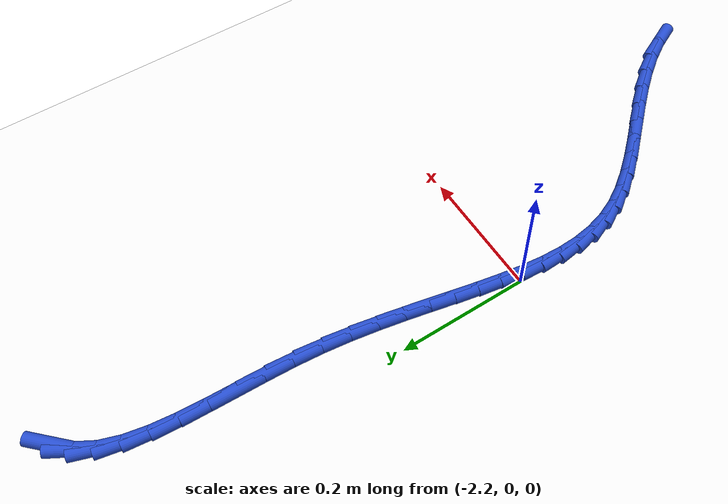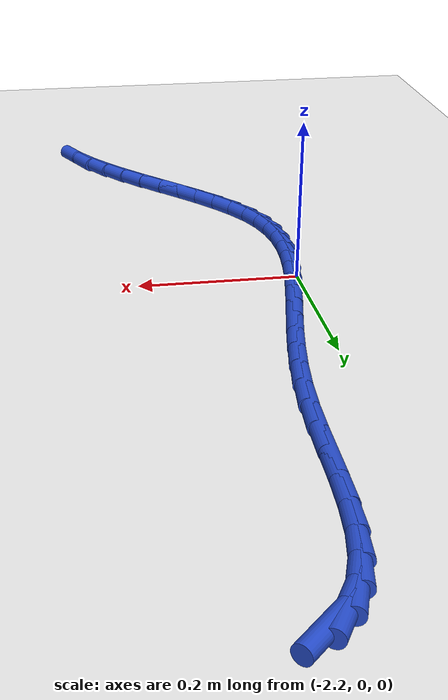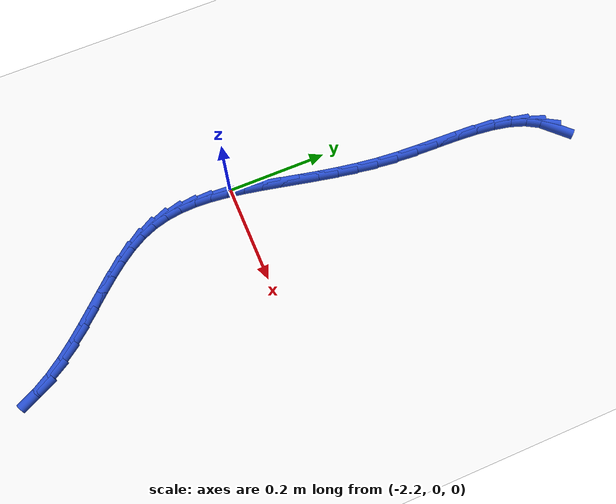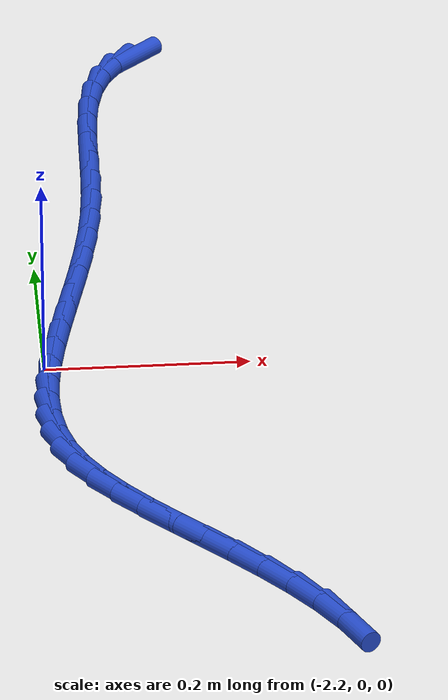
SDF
<sdf version="1.6">
 <world name="default">
  <model name="ground_plane">
   <static>1</static>
   <link name="link">
    <collision name="collision">
     <geometry><plane><normal>0 0 1</normal><size>100 100</size></plane></geometry>
     <surface><friction><ode><mu>100</mu><mu2>50</mu2></ode></friction></surface>
    </collision>
    <visual name="visual">
     <cast_shadows>0</cast_shadows>
     <geometry><plane><normal>0 0 1</normal><size>100 100</size></plane></geometry>
     <material>
      <script><uri>file://media/materials/scripts/gazebo.material</uri><name>Gazebo/WhiteGlow</name></script>
     </material>
    </visual>
   </link>
  </model>
  <model name="line">
   <link name="link_90">
    <pose>-2.0696606800046493 0.650584807200995 0.01 0 1.57 0.7820591072526031</pose>
    <collision name="collision">
     <geometry><cylinder><radius>0.01</radius><length>0.08</length></cylinder></geometry>
    </collision>
    <visual name="visual">
     <material>
      <script><name>Gazebo/Blue</name><uri>file://media/materials/scripts/gazebo.material</uri></script>
     </material>
     <geometry><cylinder><radius>0.01</radius><length>0.08</length></cylinder></geometry>
    </visual>
   </link>
   <link name="link_91">
    <pose>-2.089862924570618 0.6305170270083776 0.01 0 1.57 1.0436599838732687</pose>
    <collision name="collision">
     <geometry><cylinder><radius>0.01</radius><length>0.08</length></cylinder></geometry>
    </collision>
    <visual name="visual">
     <material>
      <script><name>Gazebo/Blue</name><uri>file://media/materials/scripts/gazebo.material</uri></script>
     </material>
     <geometry><cylinder><radius>0.01</radius><length>0.08</length></cylinder></geometry>
    </visual>
   </link>
   <link name="link_92">
    <pose>-2.1048303741443495 0.6048031483941926 0.01 0 1.57 1.237595492138099</pose>
    <collision name="collision">
     <geometry><cylinder><radius>0.01</radius><length>0.08</length></cylinder></geometry>
    </collision>
    <visual name="visual">
     <material>
      <script><name>Gazebo/Blue</name><uri>file://media/materials/scripts/gazebo.material</uri></script>
     </material>
     <geometry><cylinder><radius>0.01</radius><length>0.08</length></cylinder></geometry>
    </visual>
   </link>
   <link name="link_93">
    <pose>-2.1154105158824312 0.5742339960418432 0.01 0 1.57 1.3702488482016077</pose>
    <collision name="collision">
     <geometry><cylinder><radius>0.01</radius><length>0.08</length></cylinder></geometry>
    </collision>
    <visual name="visual">
     <material>
      <script><name>Gazebo/Blue</name><uri>file://media/materials/scripts/gazebo.material</uri></script>
     </material>
     <geometry><cylinder><radius>0.01</radius><length>0.08</length></cylinder></geometry>
    </visual>
   </link>
   <link name="link_94">
    <pose>-2.122450836941454 0.539600394634732 0.01 0 1.57 1.456594646070541</pose>
    <collision name="collision">
     <geometry><cylinder><radius>0.01</radius><length>0.08</length></cylinder></geometry>
    </collision>
    <visual name="visual">
     <material>
      <script><name>Gazebo/Blue</name><uri>file://media/materials/scripts/gazebo.material</uri></script>
     </material>
     <geometry><cylinder><radius>0.01</radius><length>0.08</length></cylinder></geometry>
    </visual>
   </link>
   <link name="link_95">
    <pose>-2.126798824478005 0.5016931688562607 0.01 0 1.57 1.5089012471780558</pose>
    <collision name="collision">
     <geometry><cylinder><radius>0.01</radius><length>0.08</length></cylinder></geometry>
    </collision>
    <visual name="visual">
     <material>
      <script><name>Gazebo/Blue</name><uri>file://media/materials/scripts/gazebo.material</uri></script>
     </material>
     <geometry><cylinder><radius>0.01</radius><length>0.08</length></cylinder></geometry>
    </visual>
   </link>
   <link name="link_96">
    <pose>-2.129301965648673 0.46130314338983264 0.01 0 1.57 1.535029495582107</pose>
    <collision name="collision">
     <geometry><cylinder><radius>0.01</radius><length>0.08</length></cylinder></geometry>
    </collision>
    <visual name="visual">
     <material>
      <script><name>Gazebo/Blue</name><uri>file://media/materials/scripts/gazebo.material</uri></script>
     </material>
     <geometry><cylinder><radius>0.01</radius><length>0.08</length></cylinder></geometry>
    </visual>
   </link>
   <link name="link_97">
    <pose>-2.130807747610046 0.41922114291885 0.01 0 1.57 1.5392616347512258</pose>
    <collision name="collision">
     <geometry><cylinder><radius>0.01</radius><length>0.08</length></cylinder></geometry>
    </collision>
    <visual name="visual">
     <material>
      <script><name>Gazebo/Blue</name><uri>file://media/materials/scripts/gazebo.material</uri></script>
     </material>
     <geometry><cylinder><radius>0.01</radius><length>0.08</length></cylinder></geometry>
    </visual>
   </link>
   <link name="link_98">
    <pose>-2.132163657518714 0.3762379921267146 0.01 0 1.57 1.5231795429479786</pose>
    <collision name="collision">
     <geometry><cylinder><radius>0.01</radius><length>0.08</length></cylinder></geometry>
    </collision>
    <visual name="visual">
     <material>
      <script><name>Gazebo/Blue</name><uri>file://media/materials/scripts/gazebo.material</uri></script>
     </material>
     <geometry><cylinder><radius>0.01</radius><length>0.08</length></cylinder></geometry>
    </visual>
   </link>
   <link name="link_99">
    <pose>-2.134217182531265 0.3331445156968301 0.01 0 1.57 1.4866401281458708</pose>
    <collision name="collision">
     <geometry><cylinder><radius>0.01</radius><length>0.08</length></cylinder></geometry>
    </collision>
    <visual name="visual">
     <material>
      <script><name>Gazebo/Blue</name><uri>file://media/materials/scripts/gazebo.material</uri></script>
     </material>
     <geometry><cylinder><radius>0.01</radius><length>0.08</length></cylinder></geometry>
    </visual>
   </link>
   <link name="link_100">
    <pose>-2.1377959875711428 0.2907192110533849 0.01 0 1.57 1.4420358062812704</pose>
    <collision name="collision">
     <geometry><cylinder><radius>0.01</radius><length>0.08</length></cylinder></geometry>
    </collision>
    <visual name="visual">
     <material>
      <script><name>Gazebo/Blue</name><uri>file://media/materials/scripts/gazebo.material</uri></script>
     </material>
     <geometry><cylinder><radius>0.01</radius><length>0.08</length></cylinder></geometry>
    </visual>
   </link>
   <link name="link_101">
    <pose>-2.143148419422995 0.24938030315216994 0.01 0 1.57 1.405413087514917</pose>
    <collision name="collision">
     <geometry><cylinder><radius>0.01</radius><length>0.08</length></cylinder></geometry>
    </collision>
    <visual name="visual">
     <material>
      <script><name>Gazebo/Blue</name><uri>file://media/materials/scripts/gazebo.material</uri></script>
     </material>
     <geometry><cylinder><radius>0.01</radius><length>0.08</length></cylinder></geometry>
    </visual>
   </link>
   <link name="link_102">
    <pose>-2.149865318705014 0.20913712008607477 0.01 0 1.57 1.3782026235519917</pose>
    <collision name="collision">
     <geometry><cylinder><radius>0.01</radius><length>0.08</length></cylinder></geometry>
    </collision>
    <visual name="visual">
     <material>
      <script><name>Gazebo/Blue</name><uri>file://media/materials/scripts/gazebo.material</uri></script>
     </material>
     <geometry><cylinder><radius>0.01</radius><length>0.08</length></cylinder></geometry>
    </visual>
   </link>
   <link name="link_103">
    <pose>-2.157501987583788 0.16997688892123974 0.01 0 1.57 1.3609687617727926</pose>
    <collision name="collision">
     <geometry><cylinder><radius>0.01</radius><length>0.08</length></cylinder></geometry>
    </collision>
    <visual name="visual">
     <material>
      <script><name>Gazebo/Blue</name><uri>file://media/materials/scripts/gazebo.material</uri></script>
     </material>
     <geometry><cylinder><radius>0.01</radius><length>0.08</length></cylinder></geometry>
    </visual>
   </link>
   <link name="link_104">
    <pose>-2.165613728225906 0.13188683672380552 0.01 0 1.57 1.354376549212759</pose>
    <collision name="collision">
     <geometry><cylinder><radius>0.01</radius><length>0.08</length></cylinder></geometry>
    </collision>
    <visual name="visual">
     <material>
      <script><name>Gazebo/Blue</name><uri>file://media/materials/scripts/gazebo.material</uri></script>
     </material>
     <geometry><cylinder><radius>0.01</radius><length>0.08</length></cylinder></geometry>
    </visual>
   </link>
   <link name="link_105">
    <pose>-2.1737558427979593 0.09485419055991287 0.01 0 1.57 1.359276003985818</pose>
    <collision name="collision">
     <geometry><cylinder><radius>0.01</radius><length>0.08</length></cylinder></geometry>
    </collision>
    <visual name="visual">
     <material>
      <script><name>Gazebo/Blue</name><uri>file://media/materials/scripts/gazebo.material</uri></script>
     </material>
     <geometry><cylinder><radius>0.01</radius><length>0.08</length></cylinder></geometry>
    </visual>
   </link>
   <link name="link_106">
    <pose>-2.181483633466537 0.058866177495701694 0.01 0 1.57 1.376771576158216</pose>
    <collision name="collision">
     <geometry><cylinder><radius>0.01</radius><length>0.08</length></cylinder></geometry>
    </collision>
    <visual name="visual">
     <material>
      <script><name>Gazebo/Blue</name><uri>file://media/materials/scripts/gazebo.material</uri></script>
     </material>
     <geometry><cylinder><radius>0.01</radius><length>0.08</length></cylinder></geometry>
    </visual>
   </link>
   <link name="link_107">
    <pose>-2.188352402398229 0.023910024597314415 0.01 0 1.57 1.4082614212402158</pose>
    <collision name="collision">
     <geometry><cylinder><radius>0.01</radius><length>0.08</length></cylinder></geometry>
    </collision>
    <visual name="visual">
     <material>
      <script><name>Gazebo/Blue</name><uri>file://media/materials/scripts/gazebo.material</uri></script>
     </material>
     <geometry><cylinder><radius>0.01</radius><length>0.08</length></cylinder></geometry>
    </visual>
   </link>
   <link name="link_108">
    <pose>-2.1939174517596247 -0.010027041069109052 0.01 0 1.57 1.4554124004010334</pose>
    <collision name="collision">
     <geometry><cylinder><radius>0.01</radius><length>0.08</length></cylinder></geometry>
    </collision>
    <visual name="visual">
     <material>
      <script><name>Gazebo/Blue</name><uri>file://media/materials/scripts/gazebo.material</uri></script>
     </material>
     <geometry><cylinder><radius>0.01</radius><length>0.08</length></cylinder></geometry>
    </visual>
   </link>
   <link name="link_109">
    <pose>-2.197734083717315 -0.04295779243742806 0.01 0 1.57 1.5200054027143113</pose>
    <collision name="collision">
     <geometry><cylinder><radius>0.01</radius><length>0.08</length></cylinder></geometry>
    </collision>
    <visual name="visual">
     <material>
      <script><name>Gazebo/Blue</name><uri>file://media/materials/scripts/gazebo.material</uri></script>
     </material>
     <geometry><cylinder><radius>0.01</radius><length>0.08</length></cylinder></geometry>
    </visual>
   </link>
   <link name="link_110">
    <pose>-2.199357600437887 -0.07489500244150175 0.01 0 1.57 -1.5380427685179836</pose>
    <collision name="collision">
     <geometry><cylinder><radius>0.01</radius><length>0.08</length></cylinder></geometry>
    </collision>
    <visual name="visual">
     <material>
      <script><name>Gazebo/Blue</name><uri>file://media/materials/scripts/gazebo.material</uri></script>
     </material>
     <geometry><cylinder><radius>0.01</radius><length>0.08</length></cylinder></geometry>
    </visual>
   </link>
   <link name="link_111">
    <pose>-2.1983433040879334 -0.1058514440151895 0.01 0 1.57 -1.4350239513727368</pose>
    <collision name="collision">
     <geometry><cylinder><radius>0.01</radius><length>0.08</length></cylinder></geometry>
    </collision>
    <visual name="visual">
     <material>
      <script><name>Gazebo/Blue</name><uri>file://media/materials/scripts/gazebo.material</uri></script>
     </material>
     <geometry><cylinder><radius>0.01</radius><length>0.08</length></cylinder></geometry>
    </visual>
   </link>
   <link name="link_112">
    <pose>-2.1942464968340416 -0.1358398900923512 0.01 0 1.57 -1.313997941223526</pose>
    <collision name="collision">
     <geometry><cylinder><radius>0.01</radius><length>0.08</length></cylinder></geometry>
    </collision>
    <visual name="visual">
     <material>
      <script><name>Gazebo/Blue</name><uri>file://media/materials/scripts/gazebo.material</uri></script>
     </material>
     <geometry><cylinder><radius>0.01</radius><length>0.08</length></cylinder></geometry>
    </visual>
   </link>
   <link name="link_113">
    <pose>-2.186622480842804 -0.16487311360684473 0.01 0 1.57 -1.1796616134947804</pose>
    <collision name="collision">
     <geometry><cylinder><radius>0.01</radius><length>0.08</length></cylinder></geometry>
    </collision>
    <visual name="visual">
     <material>
      <script><name>Gazebo/Blue</name><uri>file://media/materials/scripts/gazebo.material</uri></script>
     </material>
     <geometry><cylinder><radius>0.01</radius><length>0.08</length></cylinder></geometry>
    </visual>
   </link>
   <link name="link_114">
    <pose>-2.1750373962992358 -0.19296620499804507 0.01 0 1.57 -1.0536261153676139</pose>
    <collision name="collision">
     <geometry><cylinder><radius>0.01</radius><length>0.08</length></cylinder></geometry>
    </collision>
    <visual name="visual">
     <material>
      <script><name>Gazebo/Blue</name><uri>file://media/materials/scripts/gazebo.material</uri></script>
     </material>
     <geometry><cylinder><radius>0.01</radius><length>0.08</length></cylinder></geometry>
    </visual>
   </link>
   <link name="link_115">
    <pose>-2.1595268280462823 -0.22023463657780634 0.01 0 1.57 -0.9582100014310571</pose>
    <collision name="collision">
     <geometry><cylinder><radius>0.01</radius><length>0.08</length></cylinder></geometry>
    </collision>
    <visual name="visual">
     <material>
      <script><name>Gazebo/Blue</name><uri>file://media/materials/scripts/gazebo.material</uri></script>
     </material>
     <geometry><cylinder><radius>0.01</radius><length>0.08</length></cylinder></geometry>
    </visual>
   </link>
   <link name="link_116">
    <pose>-2.1407655814864914 -0.24693056590003895 0.01 0 1.57 -0.8918405086587995</pose>
    <collision name="collision">
     <geometry><cylinder><radius>0.01</radius><length>0.08</length></cylinder></geometry>
    </collision>
    <visual name="visual">
     <material>
      <script><name>Gazebo/Blue</name><uri>file://media/materials/scripts/gazebo.material</uri></script>
     </material>
     <geometry><cylinder><radius>0.01</radius><length>0.08</length></cylinder></geometry>
    </visual>
   </link>
   <link name="link_117">
    <pose>-2.119474272807531 -0.2733159462897034 0.01 0 1.57 -0.8507618596067881</pose>
    <collision name="collision">
     <geometry><cylinder><radius>0.01</radius><length>0.08</length></cylinder></geometry>
    </collision>
    <visual name="visual">
     <material>
      <script><name>Gazebo/Blue</name><uri>file://media/materials/scripts/gazebo.material</uri></script>
     </material>
     <geometry><cylinder><radius>0.01</radius><length>0.08</length></cylinder></geometry>
    </visual>
   </link>
   <link name="link_118">
    <pose>-2.096373518197064 -0.29965273107176016 0.01 0 1.57 -0.831887521001515</pose>
    <collision name="collision">
     <geometry><cylinder><radius>0.01</radius><length>0.08</length></cylinder></geometry>
    </collision>
    <visual name="visual">
     <material>
      <script><name>Gazebo/Blue</name><uri>file://media/materials/scripts/gazebo.material</uri></script>
     </material>
     <geometry><cylinder><radius>0.01</radius><length>0.08</length></cylinder></geometry>
    </visual>
   </link>
   <link name="link_119">
    <pose>-2.072183933842758 -0.3262028735711705 0.01 0 1.57 -0.8332000318156585</pose>
    <collision name="collision">
     <geometry><cylinder><radius>0.01</radius><length>0.08</length></cylinder></geometry>
    </collision>
    <visual name="visual">
     <material>
      <script><name>Gazebo/Blue</name><uri>file://media/materials/scripts/gazebo.material</uri></script>
     </material>
     <geometry><cylinder><radius>0.01</radius><length>0.08</length></cylinder></geometry>
    </visual>
   </link>
   <link name="link_120">
    <pose>-2.0476261359322776 -0.3532283271128935 0.01 0 1.57 -0.8537435741183244</pose>
    <collision name="collision">
     <geometry><cylinder><radius>0.01</radius><length>0.08</length></cylinder></geometry>
    </collision>
    <visual name="visual">
     <material>
      <script><name>Gazebo/Blue</name><uri>file://media/materials/scripts/gazebo.material</uri></script>
     </material>
     <geometry><cylinder><radius>0.01</radius><length>0.08</length></cylinder></geometry>
    </visual>
   </link>
   <link name="link_121">
    <pose>-2.0234207406532887 -0.3809910450218904 0.01 0 1.57 -0.8934568374242794</pose>
    <collision name="collision">
     <geometry><cylinder><radius>0.01</radius><length>0.08</length></cylinder></geometry>
    </collision>
    <visual name="visual">
     <material>
      <script><name>Gazebo/Blue</name><uri>file://media/materials/scripts/gazebo.material</uri></script>
     </material>
     <geometry><cylinder><radius>0.01</radius><length>0.08</length></cylinder></geometry>
    </visual>
   </link>
   <link name="link_122">
    <pose>-2.000288364193456 -0.4097529806231217 0.01 0 1.57 -0.9528959925890036</pose>
    <collision name="collision">
     <geometry><cylinder><radius>0.01</radius><length>0.08</length></cylinder></geometry>
    </collision>
    <visual name="visual">
     <material>
      <script><name>Gazebo/Blue</name><uri>file://media/materials/scripts/gazebo.material</uri></script>
     </material>
     <geometry><cylinder><radius>0.01</radius><length>0.08</length></cylinder></geometry>
    </visual>
   </link>
   <link name="link_123">
    <pose>-1.9789496227404464 -0.4397760872415479 0.01 0 1.57 -1.0327868612668116</pose>
    <collision name="collision">
     <geometry><cylinder><radius>0.01</radius><length>0.08</length></cylinder></geometry>
    </collision>
    <visual name="visual">
     <material>
      <script><name>Gazebo/Blue</name><uri>file://media/materials/scripts/gazebo.material</uri></script>
     </material>
     <geometry><cylinder><radius>0.01</radius><length>0.08</length></cylinder></geometry>
    </visual>
   </link>
   <link name="link_124">
    <pose>-1.960125132481925 -0.47132231820212944 0.01 0 1.57 -1.1333069354640526</pose>
    <collision name="collision">
     <geometry><cylinder><radius>0.01</radius><length>0.08</length></cylinder></geometry>
    </collision>
    <visual name="visual">
     <material>
      <script><name>Gazebo/Blue</name><uri>file://media/materials/scripts/gazebo.material</uri></script>
     </material>
     <geometry><cylinder><radius>0.01</radius><length>0.08</length></cylinder></geometry>
    </visual>
   </link>
  </model>
 </world>
</sdf>
